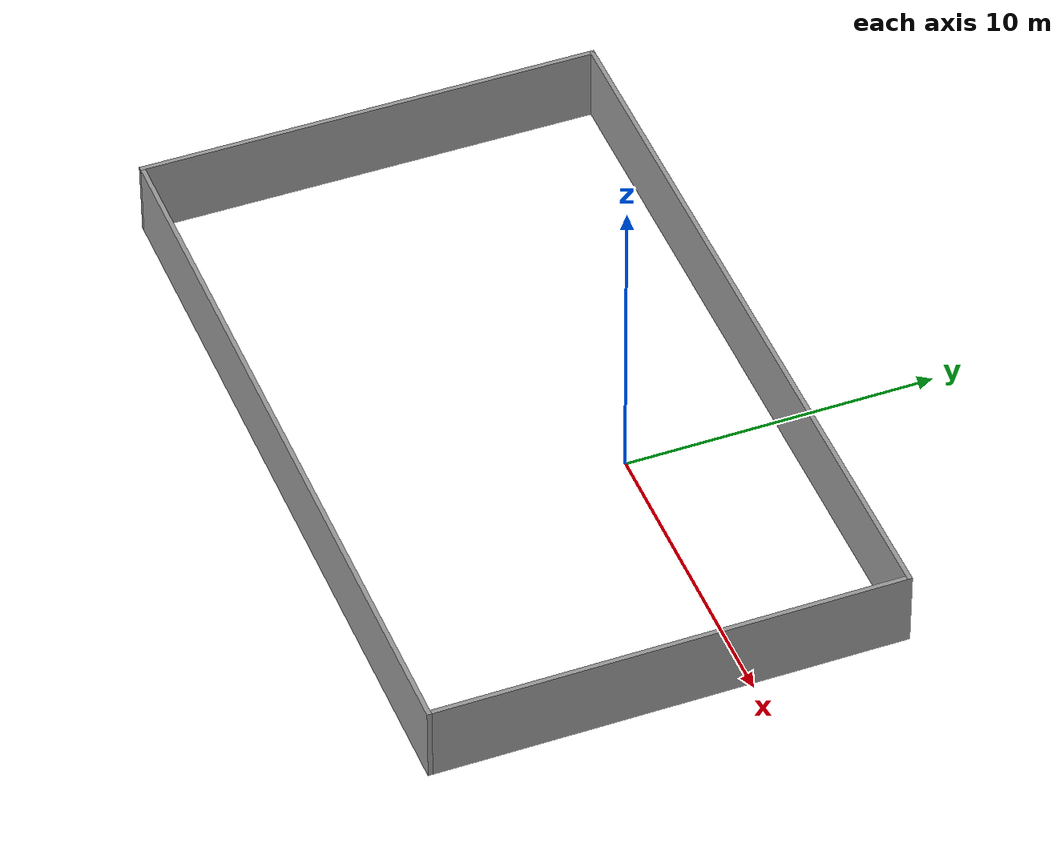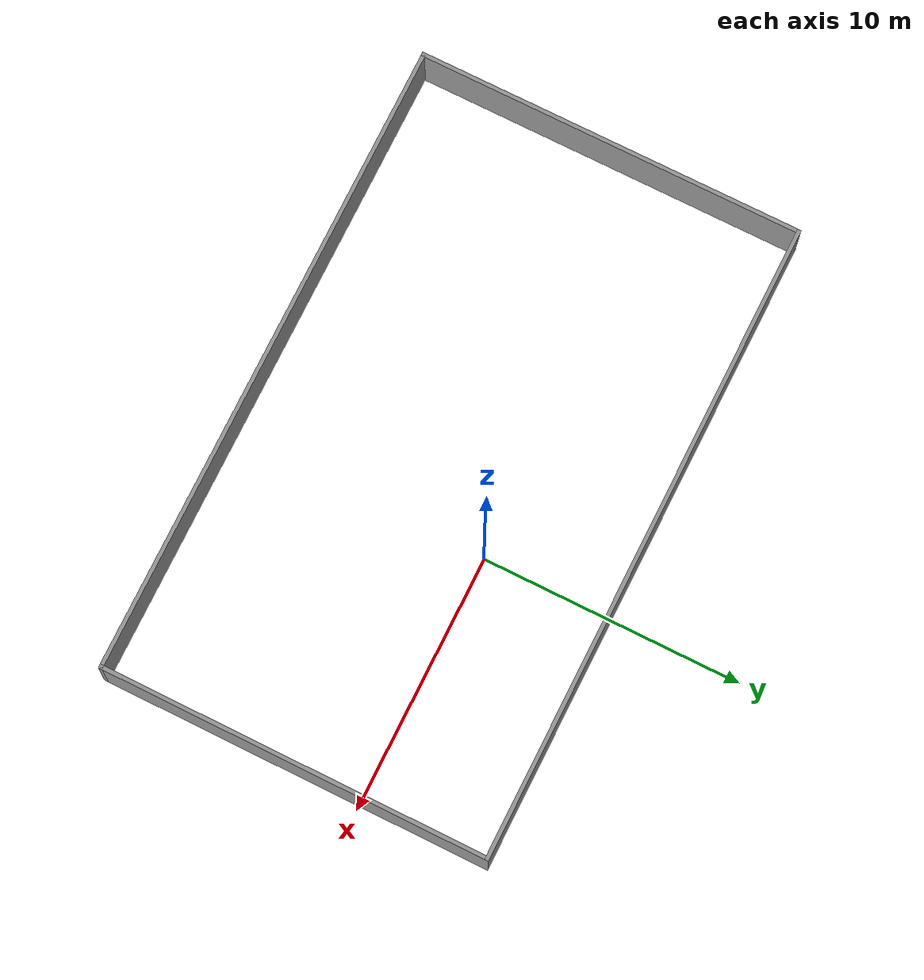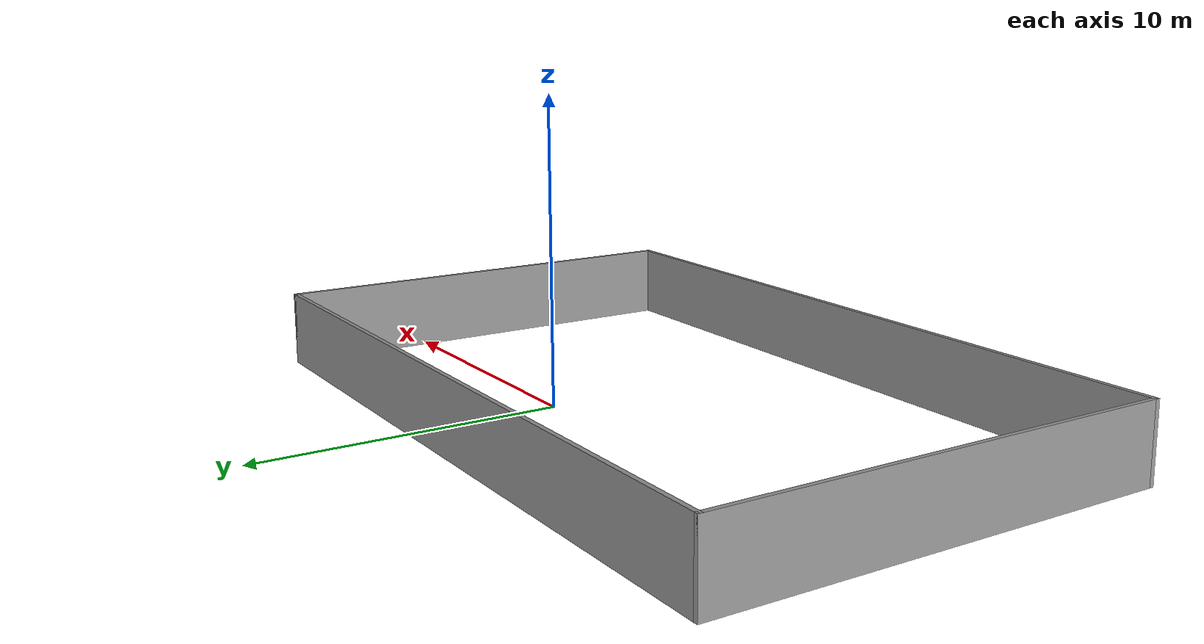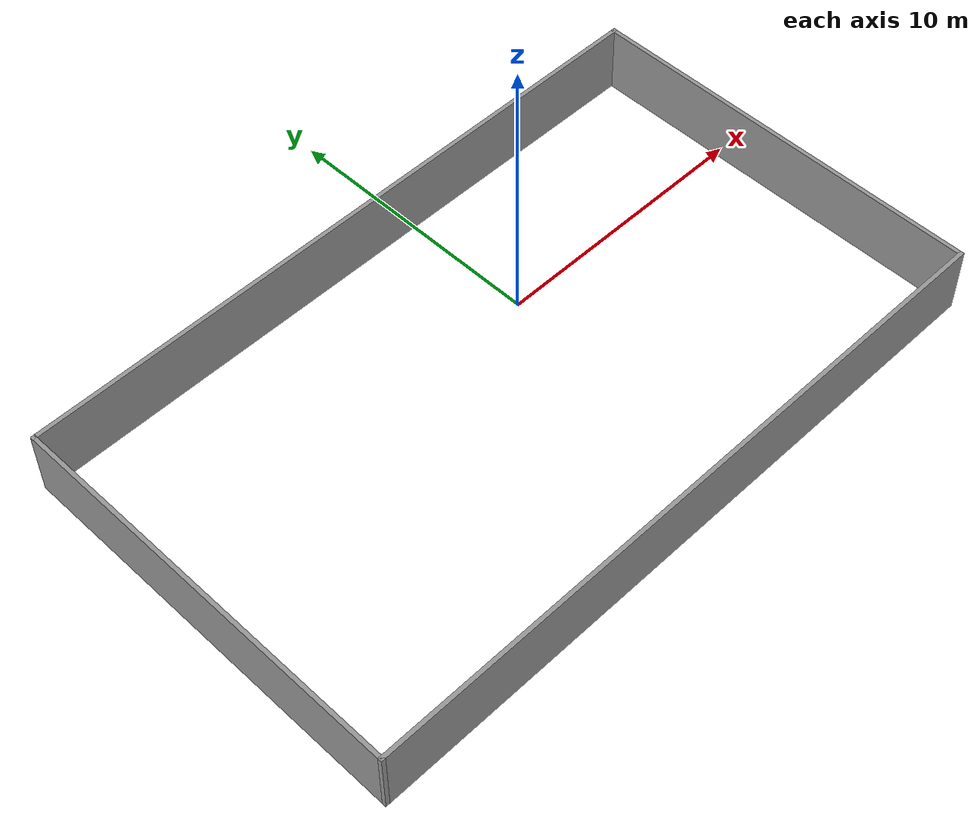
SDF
<?xml version='1.0'?>
<sdf version='1.7'>
  <model name='wall_demo'>
    <pose>-2.67257 -2.50711 0 0 -0 0</pose>
    <link name='Wall_15'>
      <collision name='Wall_15_Collision'>
        <geometry>
          <box>
            <size>25 0.15 2.5</size>
          </box>
        </geometry>
        <pose>0 0 1.25 0 -0 0</pose>
      </collision>
      <visual name='Wall_15_Visual'>
        <pose>0 0 1.25 0 -0 0</pose>
        <geometry>
          <box>
            <size>25 0.15 2.5</size>
          </box>
        </geometry>
        <material>
          <script>
            <uri>file://media/materials/scripts/gazebo.material</uri>
            <name>Gazebo/Grey</name>
          </script>
          <ambient>1 1 1 1</ambient>
        </material>
        <meta>
          <layer>0</layer>
        </meta>
      </visual>
      <pose>0 7.425 0 0 -0 0</pose>
    </link>
    <link name='Wall_16'>
      <collision name='Wall_16_Collision'>
        <geometry>
          <box>
            <size>15 0.15 2.5</size>
          </box>
        </geometry>
        <pose>0 0 1.25 0 -0 0</pose>
      </collision>
      <visual name='Wall_16_Visual'>
        <pose>0 0 1.25 0 -0 0</pose>
        <geometry>
          <box>
            <size>15 0.15 2.5</size>
          </box>
        </geometry>
        <material>
          <script>
            <uri>file://media/materials/scripts/gazebo.material</uri>
            <name>Gazebo/Grey</name>
          </script>
          <ambient>1 1 1 1</ambient>
        </material>
        <meta>
          <layer>0</layer>
        </meta>
      </visual>
      <pose>12.425 0 0 0 -0 -1.5708</pose>
    </link>
    <link name='Wall_17'>
      <collision name='Wall_17_Collision'>
        <geometry>
          <box>
            <size>25 0.15 2.5</size>
          </box>
        </geometry>
        <pose>0 0 1.25 0 -0 0</pose>
      </collision>
      <visual name='Wall_17_Visual'>
        <pose>0 0 1.25 0 -0 0</pose>
        <geometry>
          <box>
            <size>25 0.15 2.5</size>
          </box>
        </geometry>
        <material>
          <script>
            <uri>file://media/materials/scripts/gazebo.material</uri>
            <name>Gazebo/Grey</name>
          </script>
          <ambient>1 1 1 1</ambient>
        </material>
        <meta>
          <layer>0</layer>
        </meta>
      </visual>
      <pose>0 -7.425 0 0 -0 3.14159</pose>
    </link>
    <link name='Wall_18'>
      <collision name='Wall_18_Collision'>
        <geometry>
          <box>
            <size>15 0.15 2.5</size>
          </box>
        </geometry>
        <pose>0 0 1.25 0 -0 0</pose>
      </collision>
      <visual name='Wall_18_Visual'>
        <pose>0 0 1.25 0 -0 0</pose>
        <geometry>
          <box>
            <size>15 0.15 2.5</size>
          </box>
        </geometry>
        <material>
          <script>
            <uri>file://media/materials/scripts/gazebo.material</uri>
            <name>Gazebo/Grey</name>
          </script>
          <ambient>1 1 1 1</ambient>
        </material>
        <meta>
          <layer>0</layer>
        </meta>
      </visual>
      <pose>-12.425 0 0 0 -0 1.5708</pose>
    </link>
    <static>1</static>
  </model>
</sdf>
